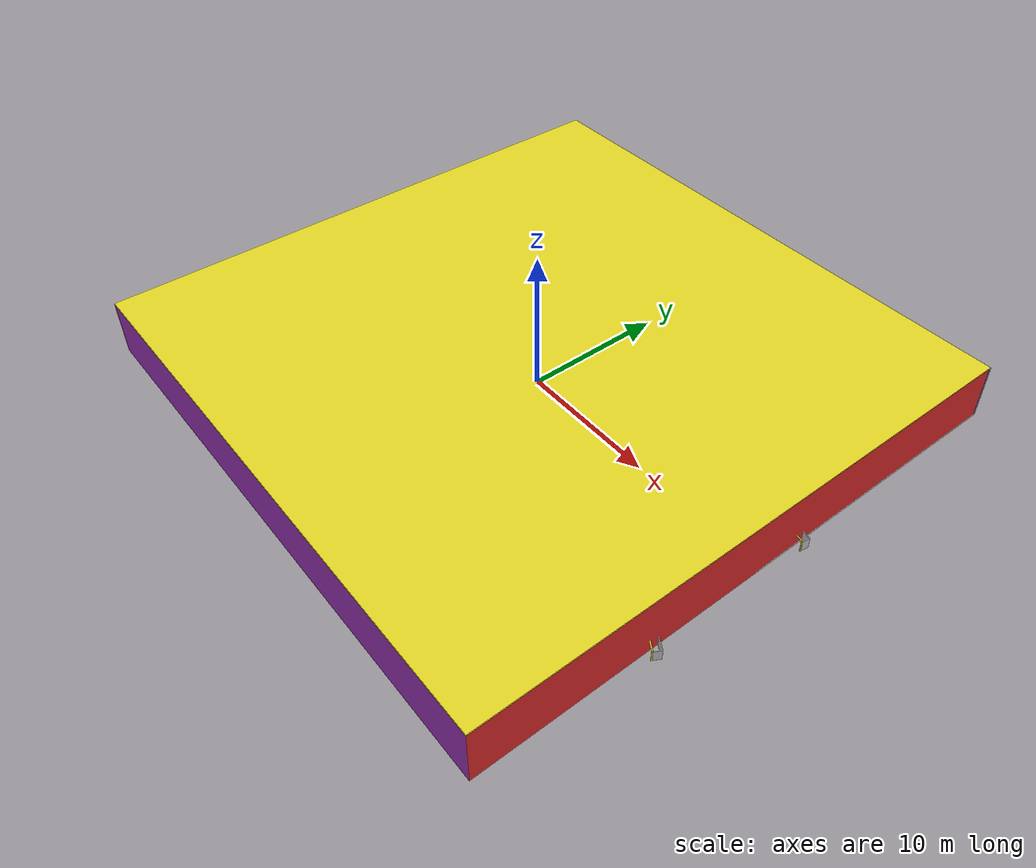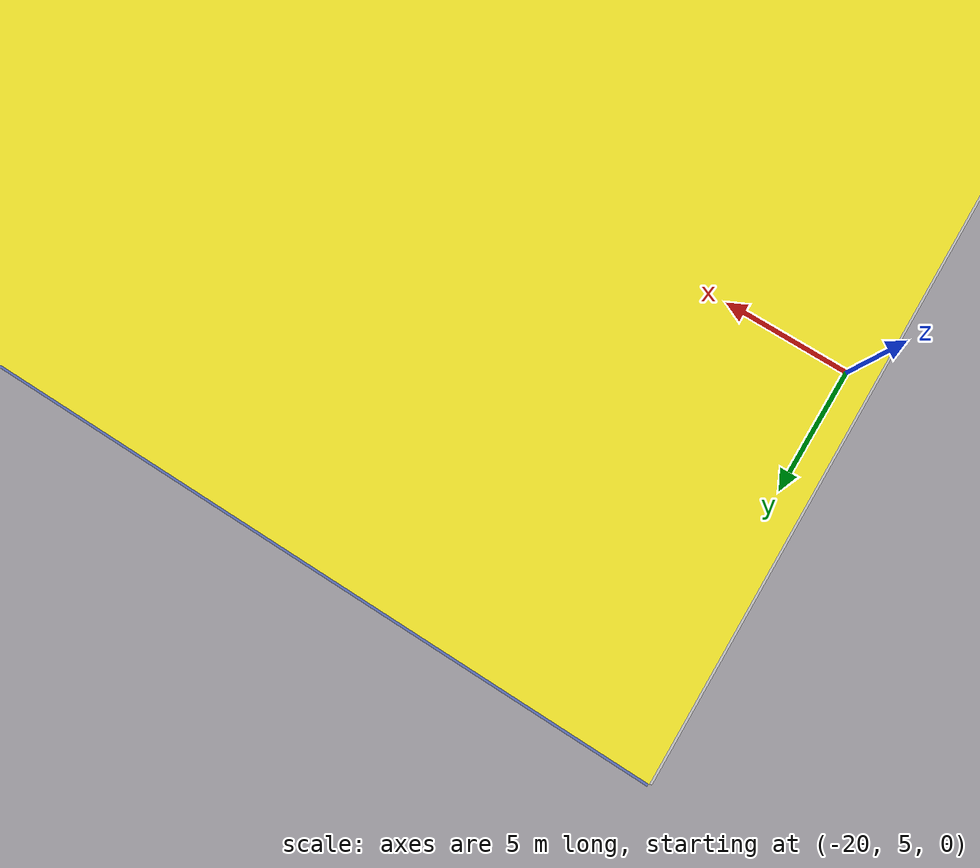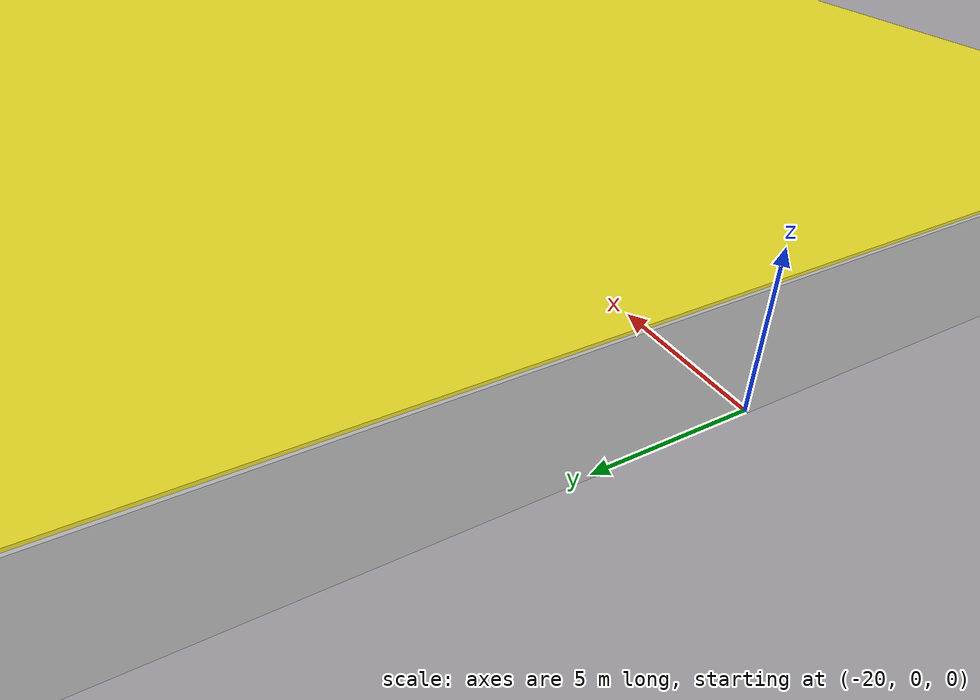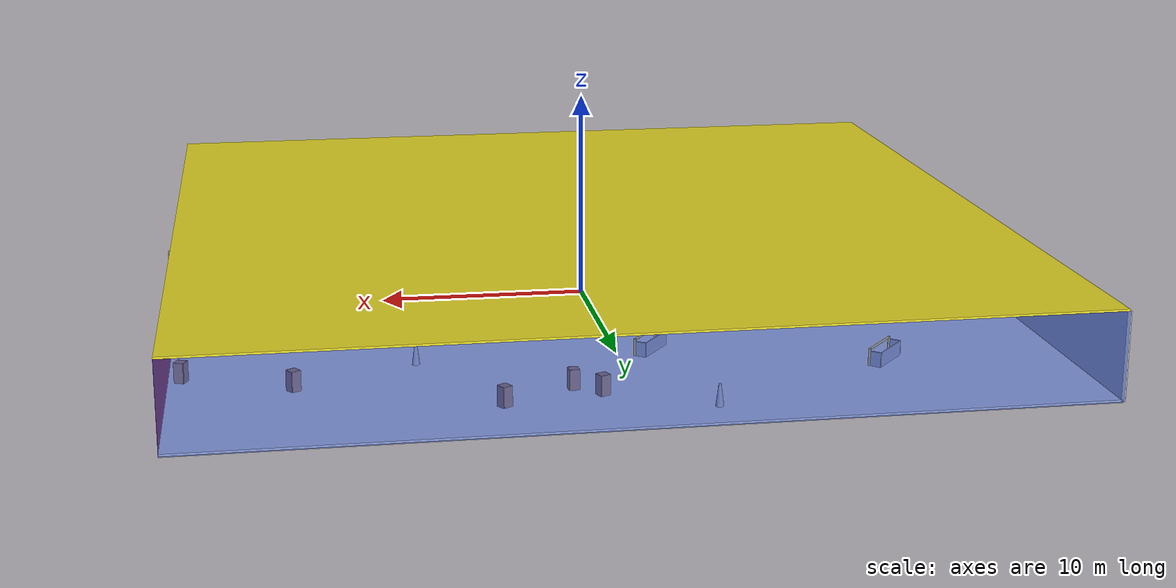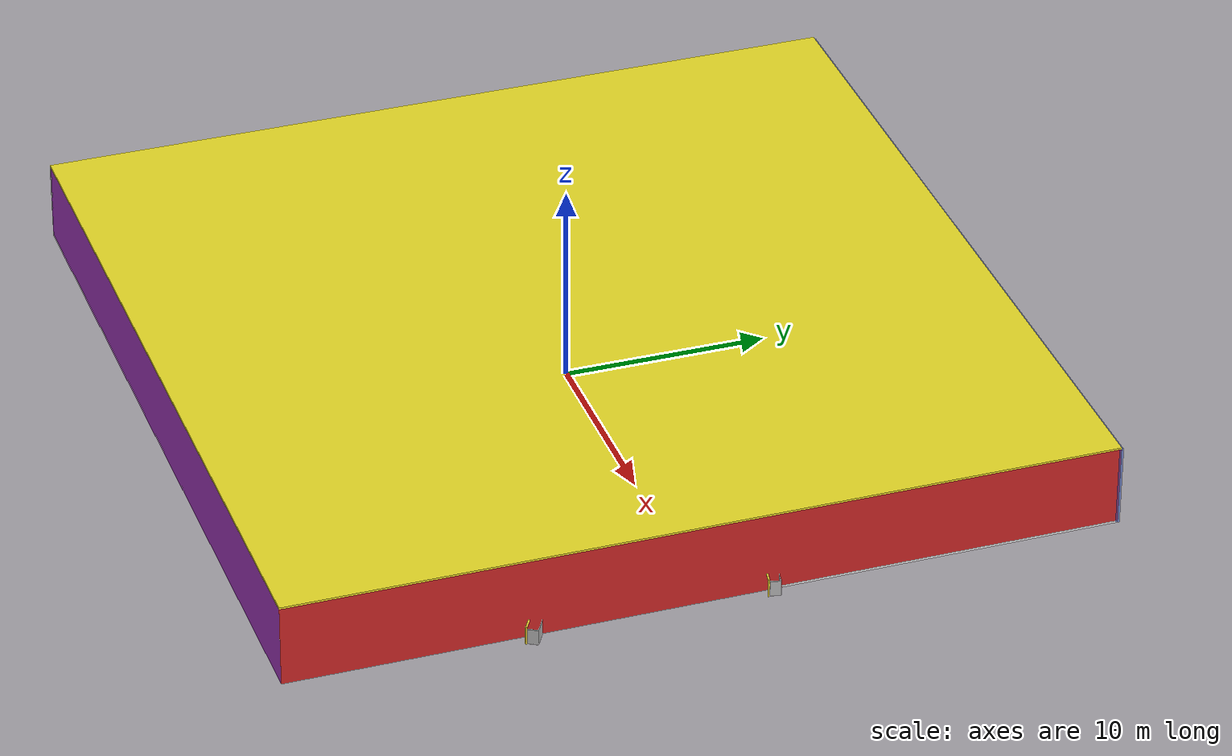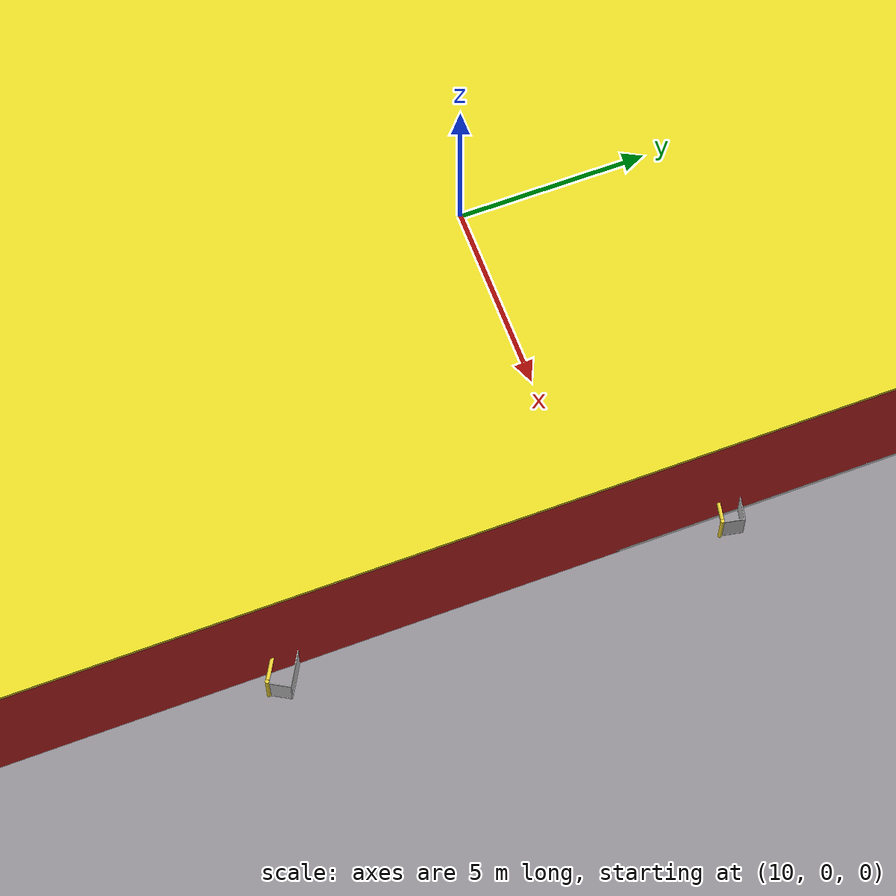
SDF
<sdf version="1.4">
 <world name="default">
  <physics type="ode">
   <max_step_size>0.001</max_step_size>
   <real_time_factor>1</real_time_factor>
   <real_time_update_rate>1000</real_time_update_rate>
   <gravity>0 0 -9.8</gravity>
  </physics>
  <scene><ambient>0.4 0.4 0.4 1</ambient><background>0.7 0.7 0.7 1</background><shadows>1</shadows></scene>
  <model name="Surrounding">
   <static>1</static>
   <link name="Ceiling">
    <collision name="Ceiling_Collision"><geometry><box><size>40 40 0.1</size></box></geometry></collision>
    <visual name="Ceiling_Visual">
     <geometry><box><size>40 40 0.1</size></box></geometry>
     <material>
      <script><uri>file://media/materials/scripts/gazebo.material</uri><name>Gazebo/Yellow</name></script>
     </material>
    </visual>
    <pose>0 0 4.05 0 0 0</pose>
   </link>
   <link name="Wall_South">
    <collision name="Wall_South_Collision">
     <geometry><box><size>40 0 4</size></box></geometry>
     <pose>0 0 2 0 -0 0</pose>
    </collision>
    <visual name="Wall_South_Visual">
     <pose>0 0 2 0 -0 0</pose>
     <geometry><box><size>40 0 4</size></box></geometry>
     <material>
      <script><uri>file://media/materials/scripts/gazebo.material</uri><name>Gazebo/Purple</name></script>
     </material>
    </visual>
    <velocity_decay><linear>0</linear><angular>0</angular></velocity_decay>
    <pose>0 -20 0 0 -0 0</pose>
   </link>
   <link name="Wall_East">
    <collision name="Wall_21_Collision">
     <geometry><box><size>40 0 4</size></box></geometry>
     <pose>0 0 2 0 -0 0</pose>
    </collision>
    <visual name="Wall_21_Visual">
     <pose>0 0 2 0 -0 0</pose>
     <geometry><box><size>40 0 4</size></box></geometry>
     <material>
      <script><uri>file://media/materials/scripts/gazebo.material</uri><name>Gazebo/RedGlow</name></script>
     </material>
    </visual>
    <velocity_decay><linear>0</linear><angular>0</angular></velocity_decay>
    <pose>20 0 0 0 -0 1.5708</pose>
   </link>
   <link name="Wall_North">
    <collision name="Wall_22_Collision">
     <geometry><box><size>40 0.2 4</size></box></geometry>
     <pose>0 0 2 0 -0 0</pose>
    </collision>
    <visual name="Wall_22_Visual">
     <pose>0 0 2 0 -0 0</pose>
     <geometry><box><size>40 0.2 4</size></box></geometry>
     <material>
      <script><uri>file://media/materials/scripts/gazebo.material</uri><name>Gazebo/BlueTransparent</name></script>
     </material>
    </visual>
    <velocity_decay><linear>0</linear><angular>0</angular></velocity_decay>
    <pose>0 20 0 0 -0 0</pose>
   </link>
   <link name="Wall_West">
    <collision name="Wall_23_Collision">
     <geometry><box><size>40 0.2 4</size></box></geometry>
     <pose>0 0 2 0 -0 0</pose>
    </collision>
    <visual name="Wall_23_Visual">
     <pose>0 0 2 0 -0 0</pose>
     <geometry><box><size>40 0.2 4</size></box></geometry>
     <material>
      <script><uri>file://media/materials/scripts/gazebo.material</uri><name>Gazebo/CloudySky</name></script>
     </material>
    </visual>
    <velocity_decay><linear>0</linear><angular>0</angular></velocity_decay>
    <pose>-20 0 0 0 0 -1.5708</pose>
   </link>
   <link name="Ground_link">
    <collision name="collision">
     <pose>0 0 .05 0 -0 0</pose>
     <geometry><box><size>40 40 0.1</size></box></geometry>
    </collision>
    <visual name="visual">
     <pose>0 0 .05 0 -0 0</pose>
     <geometry><box><size>40 40 0.1</size></box></geometry>
     <material>
      <script><uri>file://media/materials/scripts/gazebo.material</uri><name>Gazebo/White</name></script>
     </material>
    </visual>
   </link>
   <static>1</static>
  </model>
  <spherical_coordinates>
   <surface_model>EARTH_WGS84</surface_model>
   <latitude_deg>0</latitude_deg>
   <longitude_deg>0</longitude_deg>
   <elevation>0</elevation>
   <heading_deg>0</heading_deg>
  </spherical_coordinates>
  <light name="lightball_0" type="diffuse">
   <diffuse>0.8 0.8 0.8 1</diffuse>
   <specular>0.2 0.2 0.2 1</specular>
   <attenuation>
    <range>100</range>
    <constant>0.7</constant>
    <linear>0.01</linear>
    <quadratic>0.001</quadratic>
   </attenuation>
   <direction>-0.5 0.1 -0.9</direction>
   <pose>-15.8748965944 -19.1464903508 2.46940837203 0 0 0</pose>
  </light>
  <light name="lightball_1" type="diffuse">
   <diffuse>0.8 0.8 0.8 1</diffuse>
   <specular>0.2 0.2 0.2 1</specular>
   <attenuation>
    <range>100</range>
    <constant>0.7</constant>
    <linear>0.01</linear>
    <quadratic>0.001</quadratic>
   </attenuation>
   <direction>-0.5 0.1 -0.9</direction>
   <pose>-17.8192935541 -5.2861177539 3.04902597183 0 0 0</pose>
  </light>
  <light name="lightball_2" type="diffuse">
   <diffuse>0.8 0.8 0.8 1</diffuse>
   <specular>0.2 0.2 0.2 1</specular>
   <attenuation>
    <range>100</range>
    <constant>0.7</constant>
    <linear>0.01</linear>
    <quadratic>0.001</quadratic>
   </attenuation>
   <direction>-0.5 0.1 -0.9</direction>
   <pose>-6.39105632 -17.5051523907 1.97445436585 0 0 0</pose>
  </light>
  <light name="lightball_3" type="diffuse">
   <diffuse>0.8 0.8 0.8 1</diffuse>
   <specular>0.2 0.2 0.2 1</specular>
   <attenuation>
    <range>100</range>
    <constant>0.7</constant>
    <linear>0.01</linear>
    <quadratic>0.001</quadratic>
   </attenuation>
   <direction>-0.5 0.1 -0.9</direction>
   <pose>3.98458071761 5.77257010067 2.94409900414 0 0 0</pose>
  </light>
  <light name="lightball_4" type="diffuse">
   <diffuse>0.8 0.8 0.8 1</diffuse>
   <specular>0.2 0.2 0.2 1</specular>
   <attenuation>
    <range>100</range>
    <constant>0.7</constant>
    <linear>0.01</linear>
    <quadratic>0.001</quadratic>
   </attenuation>
   <direction>-0.5 0.1 -0.9</direction>
   <pose>10.7780128832 9.80844616428 1.88322068933 0 0 0</pose>
  </light>
  <light name="lightball_5" type="diffuse">
   <diffuse>0.8 0.8 0.8 1</diffuse>
   <specular>0.2 0.2 0.2 1</specular>
   <attenuation>
    <range>100</range>
    <constant>0.7</constant>
    <linear>0.01</linear>
    <quadratic>0.001</quadratic>
   </attenuation>
   <direction>-0.5 0.1 -0.9</direction>
   <pose>-7.96936843111 1.30203511345 2.60145894056 0 0 0</pose>
  </light>
  <light name="lightball_6" type="diffuse">
   <diffuse>0.8 0.8 0.8 1</diffuse>
   <specular>0.2 0.2 0.2 1</specular>
   <attenuation>
    <range>100</range>
    <constant>0.7</constant>
    <linear>0.01</linear>
    <quadratic>0.001</quadratic>
   </attenuation>
   <direction>-0.5 0.1 -0.9</direction>
   <pose>-7.84559717493 14.3042197061 3.65282329638 0 0 0</pose>
  </light>
  <light name="lightball_7" type="diffuse">
   <diffuse>0.8 0.8 0.8 1</diffuse>
   <specular>0.2 0.2 0.2 1</specular>
   <attenuation>
    <range>100</range>
    <constant>0.7</constant>
    <linear>0.01</linear>
    <quadratic>0.001</quadratic>
   </attenuation>
   <direction>-0.5 0.1 -0.9</direction>
   <pose>-3.2732209637 -3.59016823536 3.14201853914 0 0 0</pose>
  </light>
  <light name="lightball_8" type="diffuse">
   <diffuse>0.8 0.8 0.8 1</diffuse>
   <specular>0.2 0.2 0.2 1</specular>
   <attenuation>
    <range>100</range>
    <constant>0.7</constant>
    <linear>0.01</linear>
    <quadratic>0.001</quadratic>
   </attenuation>
   <direction>-0.5 0.1 -0.9</direction>
   <pose>-2.43365370364 18.0547808421 2.79536018178 0 0 0</pose>
  </light>
  <light name="lightball_9" type="diffuse">
   <diffuse>0.8 0.8 0.8 1</diffuse>
   <specular>0.2 0.2 0.2 1</specular>
   <attenuation>
    <range>100</range>
    <constant>0.7</constant>
    <linear>0.01</linear>
    <quadratic>0.001</quadratic>
   </attenuation>
   <direction>-0.5 0.1 -0.9</direction>
   <pose>-12.455895274 -1.66663552438 0.52087799679 0 0 0</pose>
  </light>
  <light name="lightball_10" type="diffuse">
   <diffuse>0.8 0.8 0.8 1</diffuse>
   <specular>0.2 0.2 0.2 1</specular>
   <attenuation>
    <range>100</range>
    <constant>0.7</constant>
    <linear>0.01</linear>
    <quadratic>0.001</quadratic>
   </attenuation>
   <direction>-0.5 0.1 -0.9</direction>
   <pose>17.7278798614 -13.7717388205 1.14764122157 0 0 0</pose>
  </light>
  <include>
   <uri>model://robocup_3Dsim_goal</uri>
   <pose>-16.8908429384 6.79612731105 0 0 0 2.95162718275</pose>
  </include>
  <include><uri>model://cabinet</uri><pose>-14.1818950032 -13.8719726787 0 0 0 2.21217958506</pose></include>
  <include><uri>model://cabinet</uri><pose>-13.409851192 5.45258839568 0 0 0 1.27527633297</pose></include>
  <include><uri>model://cabinet</uri><pose>-11.6173745638 -11.1101004451 0 0 0 3.12362031494</pose></include>
  <include><uri>model://cabinet</uri><pose>-12.1995796758 -4.45528235341 0 0 0 2.26988590558</pose></include>
  <include><uri>model://cabinet</uri><pose>-11.2085431731 2.89336558509 0 0 0 1.48025558885</pose></include>
  <include>
   <uri>model://robocup_3Dsim_goal</uri>
   <pose>-11.4351942884 13.1214618012 0 0 0 2.41464653731</pose>
  </include>
  <include>
   <uri>model://robocup_3Dsim_goal</uri>
   <pose>-6.24321259135 -2.73046894662 0 0 0 1.7779381833</pose>
  </include>
  <include>
   <uri>model://textured_shapes</uri>
   <pose>-2.00788352663 -14.7652595938 0 0 0 2.06171759559</pose>
  </include>
  <include>
   <uri>model://robocup_3Dsim_goal</uri>
   <pose>-1.3268628113 10.0314995506 0 0 0 2.4944763084</pose>
  </include>
  <include>
   <uri>model://construction_cone</uri>
   <pose>-2.96875088118 18.0172205846 0 0 0 1.19226467483</pose>
  </include>
  <include><uri>model://cabinet</uri><pose>1.60908269097 15.8207992254 0 0 0 1.97260388007</pose></include>
  <include><uri>model://cabinet</uri><pose>2.73283311844 14.8840117668 0 0 0 0.0348979148807</pose></include>
  <include><uri>model://cabinet</uri><pose>5.9237152501 16.6290577716 0 0 0 0.554818778755</pose></include>
  <include>
   <uri>model://construction_cone</uri>
   <pose>10.5088792359 -15.6513731532 0 0 0 0.558077801225</pose>
  </include>
  <include>
   <uri>model://construction_cone</uri>
   <pose>9.16655544801 10.5168927837 0 0 0 0.140900372782</pose>
  </include>
  <include>
   <uri>model://construction_cone</uri>
   <pose>14.6500944893 0.864453328849 0 0 0 1.70480346939</pose>
  </include>
  <include><uri>model://cabinet</uri><pose>14.6124509629 13.2172429499 0 0 0 0.548181541351</pose></include>
  <include><uri>model://cabinet</uri><pose>17.5846535892 -13.5144323934 0 0 0 2.77796029607</pose></include>
  <include>
   <uri>model://robocup_3Dsim_goal</uri>
   <pose>19.5973477531 -8.23926286627 0 0 0 1.04501237048</pose>
  </include>
  <include>
   <uri>model://construction_cone</uri>
   <pose>18.5510241777 -2.18488427508 0 0 0 1.03218108624</pose>
  </include>
  <include>
   <uri>model://robocup_3Dsim_goal</uri>
   <pose>19.4424864177 2.963554288 0 0 0 1.37407229303</pose>
  </include>
  <include><uri>model://cabinet</uri><pose>19.41999171 11.3015680515 0 0 0 2.71053029368</pose></include>
 </world>
</sdf>

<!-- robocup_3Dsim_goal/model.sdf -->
<sdf version="1.5">
  <model name="robocup_3d_goal">
    <static>true</static>
    <link name="left_post">
      <pose>0 1.05 0.45 0 0 0</pose>
      <collision name="collision">
        <geometry>
          <cylinder>
            <radius>0.05</radius>
            <length>0.9</length>
          </cylinder>
        </geometry>
      </collision>
      <visual name="visual">
        <geometry>
          <cylinder>
            <radius>0.05</radius>
            <length>0.9</length>
          </cylinder>
        </geometry>
        <material>
          <script>
            <uri>file://media/materials/scripts/gazebo.material</uri>
            <name>Gazebo/ZincYellow</name>
          </script>
        </material>
      </visual>
    </link>
    <link name="left_support_horiz_lower">
      <pose>0.30 1.05 0.01 0 0 0</pose>
      <collision name="collision">
        <geometry>
          <box>
            <size>0.50 0.02 0.02</size>
          </box>
        </geometry>
      </collision>
      <visual name="visual">
        <geometry>
          <box>
            <size>0.50 0.02 0.02</size>
          </box>
        </geometry>
        <material>
          <script>
            <uri>file://media/materials/scripts/gazebo.material</uri>
            <name>Gazebo/White</name>
          </script>
        </material>
      </visual>
    </link>
    <link name="left_support_horiz_upper">
      <pose>0.30 1.05 0.79 0 0 0</pose>
      <collision name="collision">
        <geometry>
          <box>
            <size>0.50 0.02 0.02</size>
          </box>
        </geometry>
      </collision>
      <visual name="visual">
        <geometry>
          <box>
            <size>0.50 0.02 0.02</size>
          </box>
        </geometry>
        <material>
          <script>
            <uri>file://media/materials/scripts/gazebo.material</uri>
            <name>Gazebo/White</name>
          </script>
        </material>
      </visual>
    </link>
    <link name="left_support_vertical">
      <pose>0.56 1.05 0.4 0 1.5708 0</pose>
      <collision name="collision">
        <geometry>
          <box>
            <size>0.80 0.02 0.02</size>
          </box>
        </geometry>
      </collision>
      <visual name="visual">
        <geometry>
          <box>
            <size>0.80 0.02 0.02</size>
          </box>
        </geometry>
        <material>
          <script>
            <uri>file://media/materials/scripts/gazebo.material</uri>
            <name>Gazebo/White</name>
          </script>
        </material>
      </visual>
    </link>
    <link name="right_support_horiz_lower">
      <pose>0.30 -1.05 0.01 0 0 0</pose>
      <collision name="collision">
        <geometry>
          <box>
            <size>0.50 0.02 0.02</size>
          </box>
        </geometry>
      </collision>
      <visual name="visual">
        <geometry>
          <box>
            <size>0.50 0.02 0.02</size>
          </box>
        </geometry>
        <material>
          <script>
            <uri>file://media/materials/scripts/gazebo.material</uri>
            <name>Gazebo/White</name>
          </script>
        </material>
      </visual>
    </link>
    <link name="right_support_horiz_upper">
      <pose>0.30 -1.05 0.79 0 0 0</pose>
      <collision name="collision">
        <geometry>
          <box>
            <size>0.50 0.02 0.02</size>
          </box>
        </geometry>
      </collision>
      <visual name="visual">
        <geometry>
          <box>
            <size>0.50 0.02 0.02</size>
          </box>
        </geometry>
        <material>
          <script>
            <uri>file://media/materials/scripts/gazebo.material</uri>
            <name>Gazebo/White</name>
          </script>
        </material>
      </visual>
    </link>
    <link name="right_support_vertical">
      <pose>0.56 -1.05 0.4 0 1.5708 0</pose>
      <collision name="collision">
        <geometry>
          <box>
            <size>0.80 0.02 0.02</size>
          </box>
        </geometry>
      </collision>
      <visual name="visual">
        <geometry>
          <box>
            <size>0.80 0.02 0.02</size>
          </box>
        </geometry>
        <material>
          <script>
            <uri>file://media/materials/scripts/gazebo.material</uri>
            <name>Gazebo/White</name>
          </script>
        </material>
      </visual>
    </link>
    <link name="center_support_horiz_lower">
      <pose>0.56 0 0.01 0 1.5708 0</pose>
      <collision name="collision">
        <geometry>
          <box>
            <size>0.02 2.08 0.02</size>
          </box>
        </geometry>
      </collision>
      <visual name="visual">
        <geometry>
          <box>
            <size>0.02 2.08 0.02</size>
          </box>
        </geometry>
        <material>
          <script>
            <uri>file://media/materials/scripts/gazebo.material</uri>
            <name>Gazebo/White</name>
          </script>
        </material>
      </visual>
    </link>
    <link name="center_support_horiz_upper">
      <pose>0.56 0 0.79 0 1.5708 0</pose>
      <collision name="collision">
        <geometry>
          <box>
            <size>0.02 2.08 0.02</size>
          </box>
        </geometry>
      </collision>
      <visual name="visual">
        <geometry>
          <box>
            <size>0.02 2.08 0.02</size>
          </box>
        </geometry>
        <material>
          <script>
            <uri>file://media/materials/scripts/gazebo.material</uri>
            <name>Gazebo/White</name>
          </script>
        </material>
      </visual>
    </link>
    <link name="right_post">
      <pose>0 -1.05 0.45 0 0 0</pose>
      <collision name="collision">
        <geometry>
          <cylinder>
            <radius>0.05</radius>
            <length>0.9</length>
          </cylinder>
        </geometry>
      </collision>
      <visual name="visual">
        <geometry>
          <cylinder>
            <radius>0.05</radius>
            <length>0.9</length>
          </cylinder>
        </geometry>
        <material>
          <script>
            <uri>file://media/materials/scripts/gazebo.material</uri>
            <name>Gazebo/ZincYellow</name>
          </script>
        </material>
      </visual>
    </link>
    <link name="crossbar">
      <pose>0 0 0.85 1.57 1.57 0</pose>
      <collision name="collision">
        <geometry>
          <cylinder>
            <radius>0.05</radius>
            <length>2.0</length>
          </cylinder>
        </geometry>
      </collision>
      <visual name="visual">
        <geometry>
          <cylinder>
            <radius>0.05</radius>
            <length>2.0</length>
          </cylinder>
        </geometry>
        <material>
          <script>
            <uri>file://media/materials/scripts/gazebo.material</uri>
            <name>Gazebo/ZincYellow</name>
          </script>
        </material>
      </visual>
    </link>
    <link name="center_net">
      <pose>0.56 0 0.40 0 0 0</pose>
      <collision name="collision">
        <geometry>
          <box>
            <size>0.01 2.1 0.80</size>
          </box>
        </geometry>
      </collision>
      <visual name="visual">
        <geometry>
          <box>
            <size>0.01 2.1 0.80</size>
          </box>
        </geometry>
        <material>
          <script>
            <uri>model://../model_source/models/robocup09_spl_field/materials/scripts/</uri>
            <uri>model://../model_source/models/robocup09_spl_field/materials/textures/</uri>
            <name>RoboCup/Net</name>
          </script>
        </material>
      </visual>
    </link>
    <link name="left_net">
      <pose>0.30 1.05 0.40 0 0 0</pose>
      <collision name="collision">
        <geometry>
          <box>
            <size>0.50 0.01 0.76</size>
          </box>
        </geometry>
      </collision>
      <visual name="visual">
        <geometry>
          <box>
            <size>0.50 0.01 0.76</size>
          </box>
        </geometry>
        <material>
          <script>
            <uri>model://../model_source/models/robocup09_spl_field/materials/scripts/</uri>
            <uri>model://../model_source/models/robocup09_spl_field/materials/textures/</uri>
            <name>RoboCup/Net</name>
          </script>
        </material>
      </visual>
    </link>
    <link name="right_net">
      <pose>0.30 -1.05 0.40 0 0 0</pose>
      <collision name="collision">
        <geometry>
          <box>
            <size>0.50 0.01 0.76</size>
          </box>
        </geometry>
      </collision>
      <visual name="visual">
        <geometry>
          <box>
            <size>0.50 0.01 0.76</size>
          </box>
        </geometry>
        <material>
          <script>
            <uri>model://../model_source/models/robocup09_spl_field/materials/scripts/</uri>
            <uri>model://../model_source/models/robocup09_spl_field/materials/textures/</uri>
            <name>RoboCup/Net</name>
          </script>
        </material>
      </visual>
    </link>
  </model>
</sdf>

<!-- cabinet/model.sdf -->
<sdf version="1.5">
  <model name="cabinet">
    <static>true</static>
    <link name="cabinet_bottom_plate">
      <inertial>
        <pose>0 0 -1 0 0 0</pose>
        <inertia>
          <ixx>2.050000</ixx>
          <ixy>0</ixy>
          <ixz>0</ixz>
          <iyy>2.050000</iyy>
          <iyz>0</iyz>
          <izz>2.050000</izz>
        </inertia>
        <mass>25.000000</mass>
      </inertial>
      <collision name="cabinet_bottom_plate_geom">
        <pose>0 0 0.010000 0 0 0</pose>
        <geometry>
          <box>
            <size>0.450000 0.450000 0.020000</size>
          </box>
        </geometry>
      </collision>
      <visual name="cabinet_bottom_plate_geom_visual">
        <pose>0 0 0.010000 0 0 0</pose>
        <geometry>
          <box>
            <size>0.450000 0.450000 0.020000</size>
          </box>
        </geometry>
        <material>
          <script>
            <uri>model://media/materials/scripts/gazebo.material</uri>
            <name>Gazebo/Wood</name>
          </script>
        </material>
      </visual>
      <collision name="cabinet_bottom_plate_geom_cabinet_back_plate">
        <pose>0.235000 0 0.510000 0 0 0</pose>
        <geometry>
          <box>
            <size>0.020000 0.450000 1.020000</size>
          </box>
        </geometry>
      </collision>
      <visual name="cabinet_bottom_plate_geom_cabinet_back_plate_visual">
        <pose>0.235000 0 0.510000 0 0 0</pose>
        <geometry>
          <box>
            <size>0.020000 0.450000 1.020000</size>
          </box>
        </geometry>
        <material>
          <script>
            <uri>model://media/materials/scripts/gazebo.material</uri>
            <name>Gazebo/Wood</name>
          </script>
        </material>
      </visual>
      <collision name="cabinet_bottom_plate_geom_cabinet_left_plate">
        <pose>0 0.235000 0.510000 0 0 0</pose>
        <geometry>
          <box>
            <size>0.450000 0.020000 1.020000</size>
          </box>
        </geometry>
      </collision>
      <visual name="cabinet_bottom_plate_geom_cabinet_left_plate_visual">
        <pose>0 0.235000 0.510000 0 0 0</pose>
        <geometry>
          <box>
            <size>0.450000 0.020000 1.020000</size>
          </box>
        </geometry>
        <material>
          <script>
            <uri>model://media/materials/scripts/gazebo.material</uri>
            <name>Gazebo/Wood</name>
          </script>
        </material>
      </visual>
      <collision name="cabinet_bottom_plate_geom_cabinet_middle_plate">
        <pose>0 0 0.510000 0 0 0</pose>
        <geometry>
          <box>
            <size>0.450000 0.450000 0.020000</size>
          </box>
        </geometry>
      </collision>
      <visual name="cabinet_bottom_plate_geom_cabinet_middle_plate_visual">
        <pose>0 0 0.510000 0 0 0</pose>
        <geometry>
          <box>
            <size>0.450000 0.450000 0.020000</size>
          </box>
        </geometry>
        <material>
          <script>
            <uri>model://media/materials/scripts/gazebo.material</uri>
            <name>Gazebo/Wood</name>
          </script>
        </material>
      </visual>
      <collision name="cabinet_bottom_plate_geom_cabinet_right_plate">
        <pose>0 -0.235000 0.510000 0 0 0</pose>
        <geometry>
          <box>
            <size>0.450000 0.020000 1.020000</size>
          </box>
        </geometry>
      </collision>
      <visual name="cabinet_bottom_plate_geom_cabinet_right_plate_visual">
        <pose>0 -0.235000 0.510000 0 0 0</pose>
        <geometry>
          <box>
            <size>0.450000 0.020000 1.020000</size>
          </box>
        </geometry>
        <material>
          <script>
            <uri>model://media/materials/scripts/gazebo.material</uri>
            <name>Gazebo/Wood</name>
          </script>
        </material>
      </visual>
      <collision name="cabinet_bottom_plate_geom_cabinet_top_plate">
        <pose>0 0 1.010000 0 0 0</pose>
        <geometry>
          <box>
            <size>0.450000 0.450000 0.020000</size>
          </box>
        </geometry>
      </collision>
      <visual name="cabinet_bottom_plate_geom_cabinet_top_plate_visual">
        <pose>0 0 1.010000 0 0 0</pose>
        <geometry>
          <box>
            <size>0.450000 0.450000 0.020000</size>
          </box>
        </geometry>
        <material>
          <script>
            <uri>model://media/materials/scripts/gazebo.material</uri>
            <name>Gazebo/Wood</name>
          </script>
        </material>
      </visual>
    </link>
  </model>
</sdf>

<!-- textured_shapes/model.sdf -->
<sdf version="1.6">
  <model name="textured_shapes">
    <pose>0 0 0.5 0 0 0</pose>
    <link name="box">
      <pose>0 -1.5 0 0 0 0</pose>
      <collision name="collision">
        <geometry>
          <box>
            <size>1 1 1</size>
          </box>
        </geometry>
      </collision>
      <visual name="visual">
        <geometry>
          <box>
            <size>1 1 1</size>
          </box>
        </geometry>
        <material>
          <script>
            <uri>model://../model_source/models/textured_shapes/materials/scripts</uri>
            <uri>model://../model_source/models/textured_shapes/materials/textures</uri>
            <name>TexturedShape/Squares</name>
          </script>
        </material>
      </visual>
    </link>
    <link name="sphere">
      <collision name="collision">
        <geometry>
          <sphere>
            <radius>0.5</radius>
          </sphere>
        </geometry>
      </collision>
      <visual name="visual">
        <geometry>
          <sphere>
            <radius>0.5</radius>
          </sphere>
        </geometry>
        <material>
          <script>
            <uri>model://../model_source/models/textured_shapes/materials/scripts</uri>
            <uri>model://../model_source/models/textured_shapes/materials/textures</uri>
            <name>TexturedShape/Squares</name>
          </script>
        </material>
      </visual>
    </link>
    <link name="cylinder">
      <pose>0 1.5 0 0 0 0</pose>
      <collision name="collision">
        <geometry>
          <cylinder>
            <radius>0.5</radius>
            <length>1</length>
          </cylinder>
        </geometry>
      </collision>
      <visual name="visual">
        <geometry>
          <cylinder>
            <radius>0.5</radius>
            <length>1</length>
          </cylinder>
        </geometry>
        <material>
          <script>
            <uri>model://../model_source/models/textured_shapes/materials/scripts</uri>
            <uri>model://../model_source/models/textured_shapes/materials/textures</uri>
            <name>TexturedShape/Squares</name>
          </script>
        </material>
      </visual>
    </link>
  </model>
</sdf>

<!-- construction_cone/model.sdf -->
<sdf version="1.5">
  <model name="Construction Cone">
    <link name="link">
      <collision name="collision">
        <geometry>
          <mesh>
            <scale>10 10 10</scale>
            <uri>file://isr-testbed/construction_cone/meshes/construction_cone.dae</uri>
          </mesh>
        </geometry>
      </collision>
      <visual name="visual">
        <geometry>
          <mesh>
            <scale>10 10 10</scale>
            <uri>file://isr-testbed/construction_cone/meshes/construction_cone.dae</uri>
          </mesh>
        </geometry>
      </visual>
    </link>
  </model>
</sdf>
